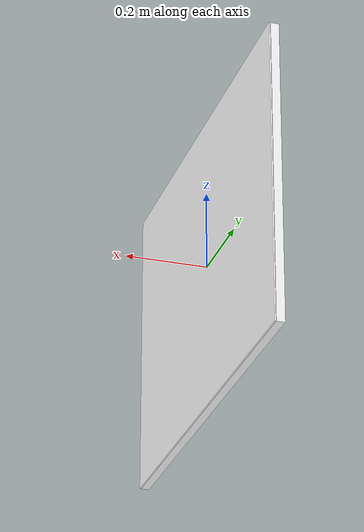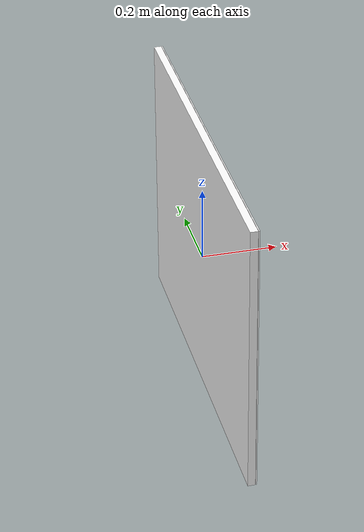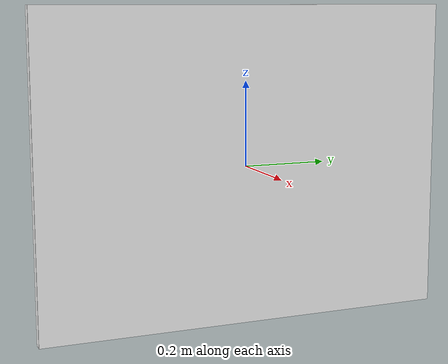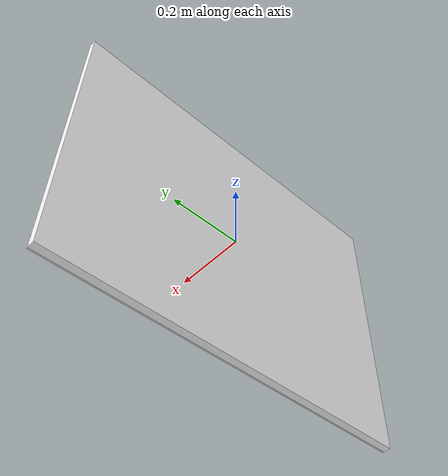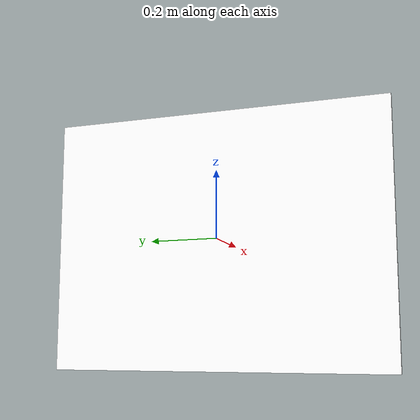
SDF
<?xml version="1.0"?>
<sdf version="1.8">
  <model name="aruco_gridboard_target_medium_100x075">
    <static>true</static>
    <link name="target_link">
      <visual name="target_visual">
        <cast_shadows>false</cast_shadows>
        <geometry>
          <box>
            <size>0.020000 1.000000 0.750000</size>
          </box>
        </geometry>
        <material>
          <ambient>1 1 1 1</ambient>
          <diffuse>1 1 1 1</diffuse>
          <specular>0.1 0.1 0.1 1</specular>
          <emissive>1 1 1 1</emissive>
          <pbr>
            <metal>
              <albedo_map>model://aruco_gridboard_target_medium_100x075/materials/textures/aruco_board.png</albedo_map>
              <roughness>0.8</roughness>
              <metalness>0.0</metalness>
            </metal>
          </pbr>
        </material>
      </visual>

      <visual name="white_back_cover">
        <pose>0.0125 0 0 0 0 0</pose>
        <cast_shadows>false</cast_shadows>
        <geometry>
          <box>
            <size>0.003000 1.000000 0.750000</size>
          </box>
        </geometry>
        <material>
          <ambient>1 1 1 1</ambient>
          <diffuse>1 1 1 1</diffuse>
          <specular>0 0 0 1</specular>
          <emissive>1 1 1 1</emissive>
        </material>
      </visual>

      <collision name="target_collision">
        <geometry>
          <box>
            <size>0.020000 1.000000 0.750000</size>
          </box>
        </geometry>
      </collision>
    </link>
  </model>
</sdf>
